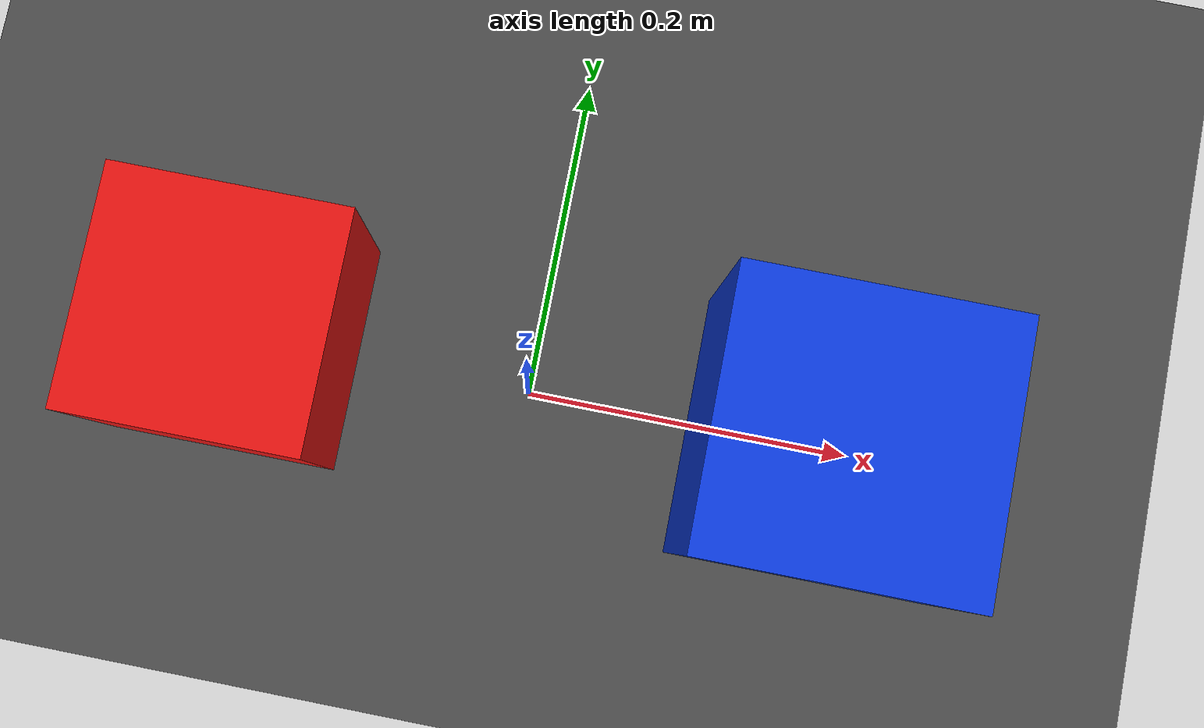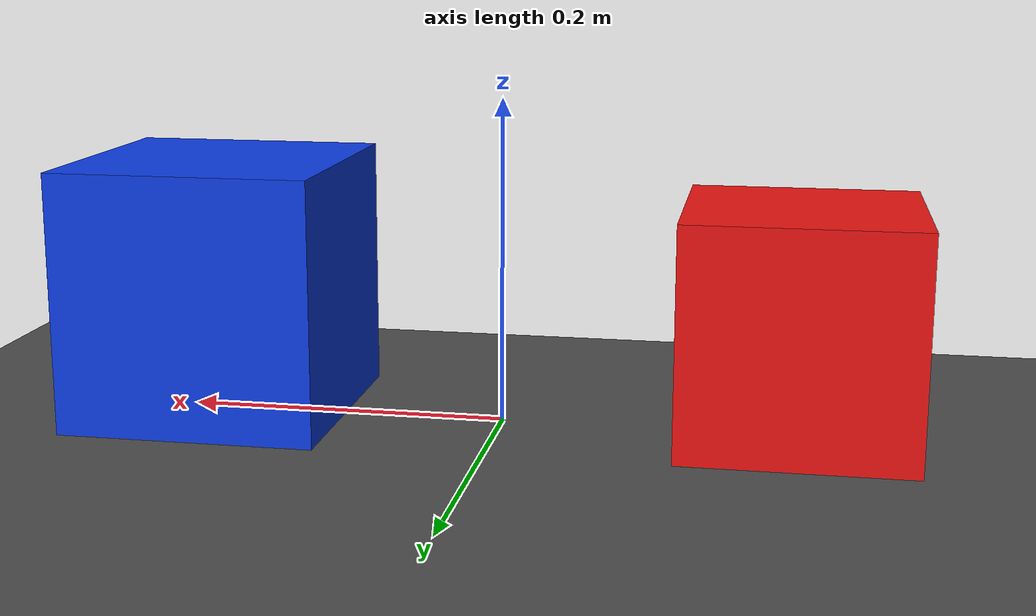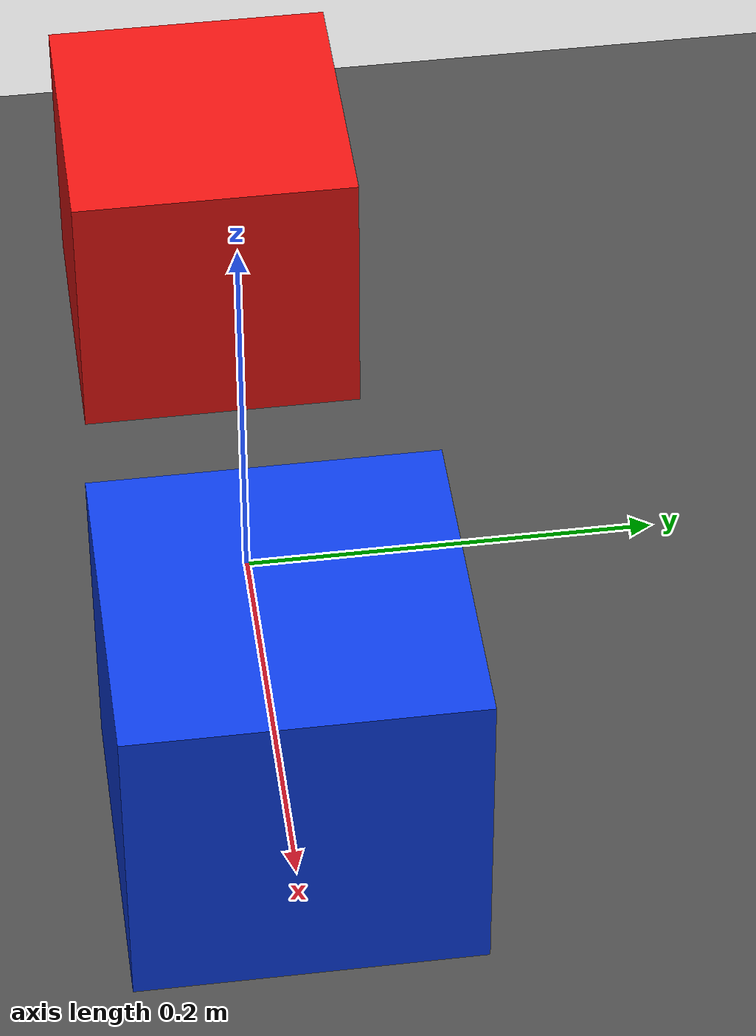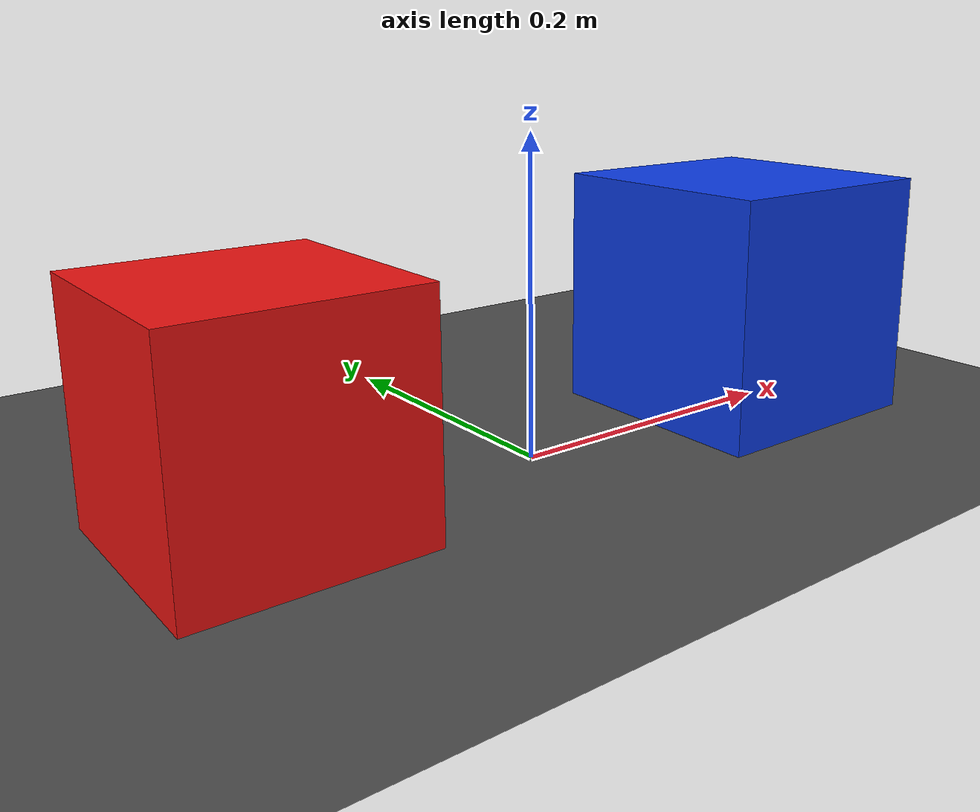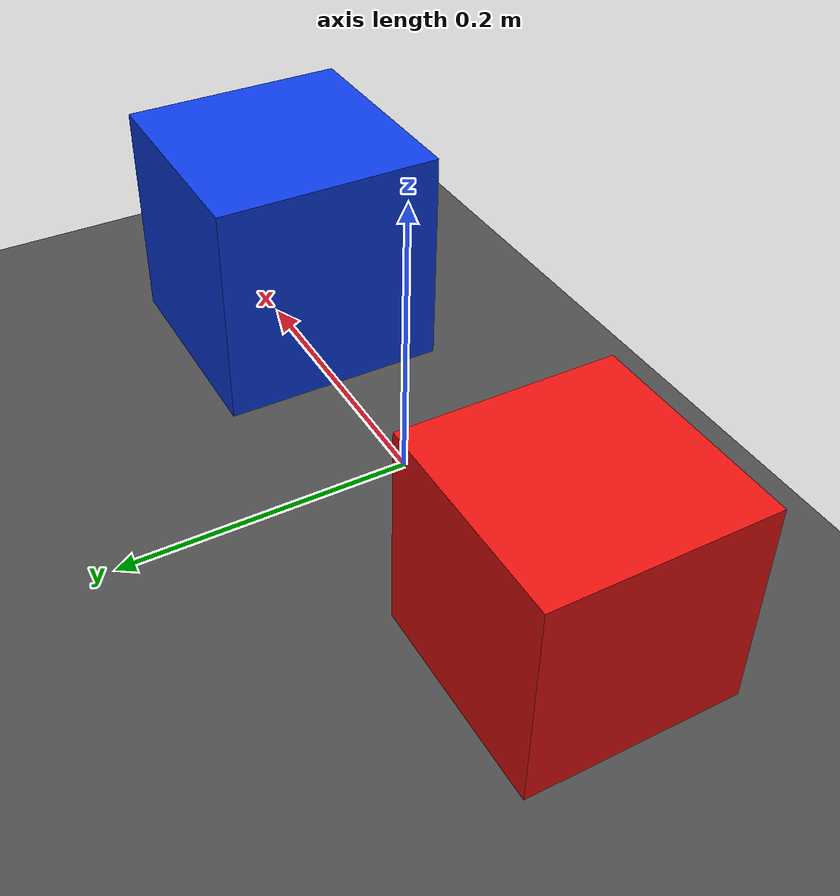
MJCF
<mujoco model="crosssim_camera_alignment">
  <compiler angle="radian" coordinate="local"/>
  <option gravity="0.0 0.0 -9.81" timestep="0.01"/>
  <visual><headlight ambient="0.45 0.45 0.45" diffuse="0.8 0.8 0.8" specular="0.15 0.15 0.15"/></visual>
  <asset>
  </asset>
  <custom>
    <text name="agenticsim_task_contract" data="{&quot;action&quot;:{&quot;interface&quot;:&quot;zero_action&quot;,&quot;operations&quot;:[]},&quot;observation&quot;:{&quot;state&quot;:[&quot;object_pose&quot;,&quot;contact&quot;]},&quot;reset&quot;:{&quot;object_poses&quot;:&quot;from_env_spec&quot;},&quot;success&quot;:[{&quot;type&quot;:&quot;settled&quot;}],&quot;termination&quot;:[{&quot;steps&quot;:120,&quot;type&quot;:&quot;timeout&quot;}]}"/>
    <text name="agenticsim_object_ids" data="[&quot;red_marker&quot;,&quot;blue_marker&quot;]"/>
    <text name="agenticsim_sensors" data="[{&quot;convention&quot;:&quot;look_at_world_z_up&quot;,&quot;far_m&quot;:10.0,&quot;fov_y_deg&quot;:55.0,&quot;height&quot;:480,&quot;id&quot;:&quot;inspection_camera&quot;,&quot;look_at&quot;:[0.0,0.0,0.08],&quot;near_m&quot;:0.01,&quot;position&quot;:[0.0,-1.0,0.72],&quot;type&quot;:&quot;camera&quot;,&quot;up&quot;:[0.0,0.0,1.0],&quot;width&quot;:640}]"/>
  </custom>
  <contact>
  </contact>
  <worldbody>
    <geom name="ground" type="plane" size="3 3 0.1" rgba="0.3 0.3 0.3 1"/>
    <light name="key_light" pos="0 -1 2" dir="0 0 -1" diffuse="0.8 0.8 0.8"/>
    <camera name="inspection_camera" pos="0 -1 0.72" xyaxes="1 -0 0 0 0.539053696 0.842271401" fovy="55"/>
    <body name="red_marker" pos="-0.18 0 0.07" quat="1 0 0 0"><geom name="red_marker_geom" type="box" size="0.07 0.07 0.07" rgba="0.92 0.08 0.07 1"/></body>
    <body name="blue_marker" pos="0.18 0 0.08" quat="1 0 0 0"><geom name="blue_marker_geom" type="box" size="0.08 0.08 0.08" rgba="0.05 0.24 0.9 1"/></body>
  </worldbody>
</mujoco>
